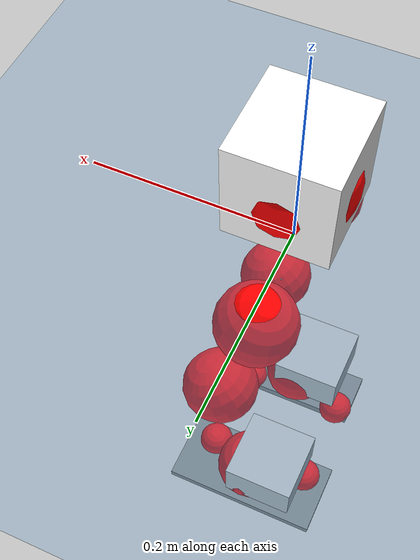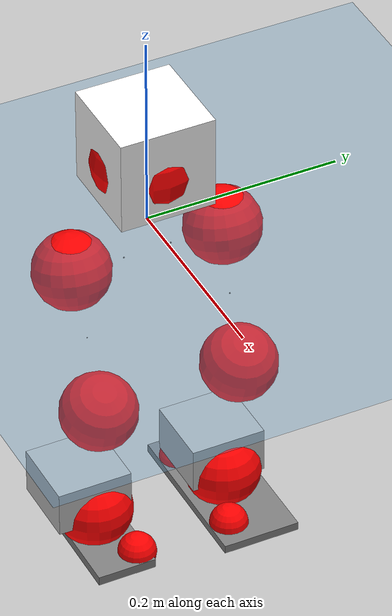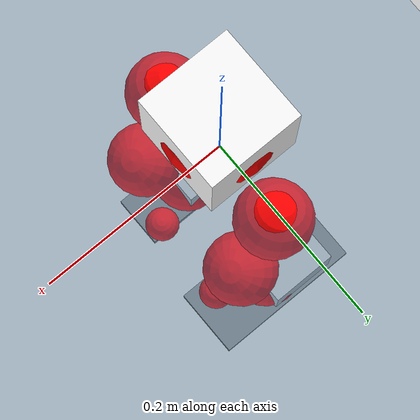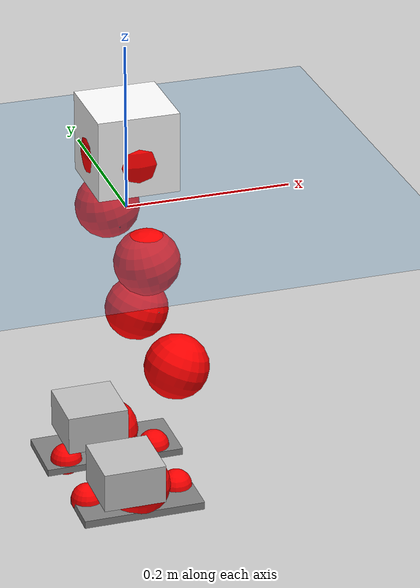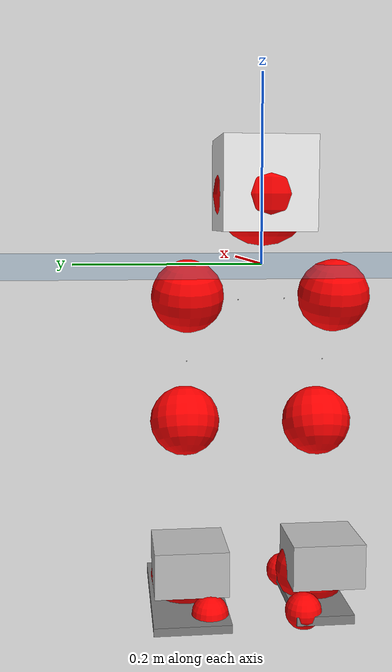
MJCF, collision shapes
<mujoco model="pi_12dof_release_v1">
  <compiler angle="radian" assetdir="assets" balanceinertia="true" inertiafromgeom="false"/>

  <option timestep="0.005" density="1.2" viscosity="2e-05"/>

  <size nkey="1"/>

  <visual>
    <quality shadowsize="8192"/>
    <map shadowclip="0.5"/>
  </visual>

  <default>
    <default class="/">
      <joint armature="0.01" damping="0.01" frictionloss="0.01"/>
      <geom contype="0" conaffinity="0" group="1" solref="-1000 -80"/>
      <site size="0.01 0.005 0.005" group="5"/>
      <general forcelimited="true" biastype="affine" gainprm="20" biasprm="0 -20 -0.5"/>
      <default class="foot">
        <geom size="0.0845 0.036 0.005" type="box" condim="6" group="4" priority="1" friction="0.9 0.2 0.2" solimp="0.015 1 0.005"/>
      </default>
      <default class="reward_collision_sphere">
        <geom group="5" rgba="1 0 0 1"/>
      </default>
    </default>
  </default>

  <asset>
    <texture type="skybox" colorspace="auto" name="//unnamed_texture_0" builtin="gradient" rgb1="0.95 0.95 0.95" rgb2="0.95 0.95 0.95" width="100" height="600"/>
    <texture type="2d" colorspace="auto" name="texplane" builtin="checker" rgb1="0.345 0.575 0.748" rgb2="0.345 0.575 0.748" markrgb="1 1 1" width="512" height="512"/>
    <material name="MatPlane" class="/" texture="texplane" texuniform="true" texrepeat="2 2" specular="0.9"/>
    <mesh name="baselink_1" class="/" file="baselink_1.STL"/>
    <mesh name="r_hip_pitch_link" class="/" file="r_hip_pitch_link.STL"/>
    <mesh name="r_hip_roll_link" class="/" file="r_hip_roll_link.STL"/>
    <mesh name="r_thigh_link" class="/" file="r_thigh_link.STL"/>
    <mesh name="r_calf_link" class="/" file="r_calf_link.STL"/>
    <mesh name="r_ankle_pitch_link" class="/" file="r_ankle_pitch_link.STL"/>
    <mesh name="r_ankle_roll_link" class="/" file="r_ankle_roll_link.STL"/>
    <mesh name="l_hip_pitch_link" class="/" file="l_hip_pitch_link.STL"/>
    <mesh name="l_hip_roll_link" class="/" file="l_hip_roll_link.STL"/>
    <mesh name="l_thigh_link" class="/" file="l_thigh_link.STL"/>
    <mesh name="l_calf_link" class="/" file="l_calf_link.STL"/>
    <mesh name="l_ankle_pitch_link" class="/" file="l_ankle_pitch_link.STL"/>
    <mesh name="l_ankle_roll_link" class="/" file="l_ankle_roll_link.STL"/>
  </asset>

  <worldbody>
    <geom name="floor" class="/" size="100 100 0.125" type="plane" group="0" material="MatPlane"/>
    <light name="toplight_shadow" class="/" pos="0 0 5" dir="0.0990148 0.0990148 -0.990148" type="directional" ambient="0.04 0.04 0.04" diffuse="0.55 0.55 0.55" specular="0.12 0.12 0.12"/>
    <light name="toplight_fill" class="/" pos="0 0 5" dir="0.0990148 0.0990148 -0.990148" type="directional" castshadow="false" ambient="0.04 0.04 0.04" diffuse="0.3 0.3 0.3" specular="0.08 0.08 0.08"/>
    <body name="trunk" pos="0.000926454 -0.00133463 -0.00265618" quat="1 0.00044484 -0.000410534 0.000233848">
      <inertial pos="0.000217162 0.00193604 0.0448127" quat="0.700985 0.00465735 0.00478758 0.713145" mass="2.0576" diaginertia="0.00412657 0.00960293 0.00629087"/>
      <joint name="//unnamed_joint_0" type="free"/>
      <geom name="//unnamed_geom_1" class="/" type="mesh" density="0" rgba="1 1 1 1" mesh="baselink_1"/>
      <geom name="//unnamed_geom_2" class="/" size="0.0486922 0.0486922 0.0486922" pos="0 0 0.0864642" type="box" rgba="1 1 1 1"/>
      <geom name="//unnamed_geom_3" class="reward_collision_sphere" size="0.0535615" pos="0 0 0.0756562"/>
      <site name="imu" class="/" pos="-0.00354118 -0.000774709 -0.00083004" size="0.00973845"/>
      <camera name="track" class="/" pos="0 -2.01663 0" quat="0.707107 0.707107 0 0" mode="trackcom"/>
      <camera name="ego_camera" class="/" pos="0.0624312 0 0.194545" quat="-0.5 -0.5 0.5 0.5"/>
      <body name="r_hip_pitch_link" pos="0.000480544 -0.0238583 -0.0343986" quat="0.992256 -0.000104233 -0.124206 -0.000212635">
        <inertial pos="0.000231295 -0.0560092 0.000276656" quat="-0.0170994 0.696984 -0.0170384 0.716681" mass="0.347337" diaginertia="4.45409e-05 0.000101697 0.000126381"/>
        <joint name="r_hip_pitch_joint" class="/" pos="0 0 0" axis="-0.00686939 -0.999925 0.0101251" stiffness="0.0120722" range="-1.71445 1.28851" armature="0.00960591" damping="0.00123511" frictionloss="0.00895521"/>
        <geom name="//unnamed_geom_4" class="/" type="mesh" density="0" rgba="0.75294 0.75294 0.75294 1" mesh="r_hip_pitch_link"/>
        <geom name="//unnamed_geom_5" class="/" size="0.000486922 0.000486922 0.000486922" type="box" rgba="0.75294 0.75294 0.75294 1"/>
        <body name="r_hip_roll_link" pos="-0.000271229 -0.0539933 0.00307026" quat="0.999999 0.000872435 0.00109405 0.00026597">
          <inertial pos="0.00133764 -0.00425549 -0.0701537" quat="0.714295 -0.0836516 -0.0833065 0.689816" mass="0.364826" diaginertia="0.000133541 0.000278839 0.000187452"/>
          <joint name="r_hip_roll_joint" class="/" pos="0 0 0" axis="-0.999941 0.0104832 0.00269398" range="-0.129442 0.509458" armature="0.00988531" damping="0.00774117" frictionloss="0.00941735"/>
          <geom name="//unnamed_geom_6" class="/" type="mesh" density="0" rgba="0.75294 0.75294 0.75294 1" mesh="r_hip_roll_link"/>
          <geom name="//unnamed_geom_7" class="/" size="0.000486922 0.000486922 0.000486922" type="box" rgba="0.75294 0.75294 0.75294 1"/>
          <geom name="//unnamed_geom_8" class="reward_collision_sphere" size="0.0389538"/>
          <body name="r_thigh_link" pos="-0.00138573 0.00697562 -0.0738309" quat="1 -0.000237577 0.000257671 -0.000621797">
            <inertial pos="0.00144106 -6.86207e-05 -0.0516035" quat="0.735852 0.677012 0.00346532 0.0128486" mass="0.10543" diaginertia="4.92192e-05 9.48861e-05 8.29646e-05"/>
            <joint name="r_thigh_joint" class="/" pos="0 0 0" axis="-0.00256383 0.00352666 -0.99999" stiffness="0.00455943" range="-0.257638 0.636118" armature="0.00963669" damping="0.0192896" frictionloss="0.00876372"/>
            <geom name="//unnamed_geom_9" class="/" type="mesh" density="0" rgba="0.75294 0.75294 0.75294 1" mesh="r_thigh_link"/>
            <geom name="//unnamed_geom_10" class="/" size="0.000486922 0.000486922 0.000486922" type="box" rgba="0.75294 0.75294 0.75294 1"/>
            <body name="r_calf_link" pos="0.00281638 0.000700276 -0.0778095" quat="0.947557 -0.000327349 0.319585 0.00100675">
              <inertial pos="-0.00288844 0.00194566 -0.0775643" quat="0.999978 -0.00646612 0.00163067 0.000406237" mass="0.718159" diaginertia="0.0013737 0.00364577 0.000263077"/>
              <joint name="r_calf_joint" class="/" pos="0 0 0" axis="-0.0123476 -0.999914 0.00443981" range="-1.69478 0.611914" armature="0.00982018" damping="0" frictionloss="0.00911297"/>
              <geom name="//unnamed_geom_11" class="/" type="mesh" density="0" rgba="0.75294 0.75294 0.75294 1" mesh="r_calf_link"/>
              <geom name="//unnamed_geom_12" class="/" size="0.000486922 0.000486922 0.000486922" type="box" rgba="0.75294 0.75294 0.75294 1"/>
              <geom name="//unnamed_geom_13" class="reward_collision_sphere" size="0.0389538"/>
              <body name="r_ankle_pitch_link" pos="-0.00280699 0.00569847 -0.150444" quat="0.980069 -1.16086e-05 -0.198657 -1.36022e-05">
                <inertial pos="0.00599393 0.00209387 -0.00170976" quat="-0.00885884 0.711787 -0.00591678 0.702315" mass="0.167254" diaginertia="0.000120538 0.000229873 0.000175716"/>
                <joint name="r_ankle_pitch_joint" class="/" pos="0 0 0" axis="-0.00659385 -0.999929 0.00992725" range="-1.32339 0.531261" armature="0.00958807" damping="0.0105727" frictionloss="0.00929002"/>
                <geom name="//unnamed_geom_14" class="/" type="mesh" density="0" rgba="0.75294 0.75294 0.75294 1" mesh="r_ankle_pitch_link"/>
                <geom name="//unnamed_geom_15" class="/" size="0.03798 0.0389538 0.0243461" type="box" rgba="0.75294 0.75294 0.75294 1"/>
                <body name="r_ankle_roll_link" pos="0.0596765 0.00799705 -0.00112354" quat="1 0.000642114 0.000240764 -0.000574622">
                  <inertial pos="-0.0217311 0.00168463 -0.0154958" quat="0.554314 0.442048 0.433809 0.556003" mass="0.463862" diaginertia="0.00042282 0.00105289 0.000395013"/>
                  <joint name="r_ankle_roll_joint" class="/" pos="0 0 0" axis="-0.999835 -0.00631138 -0.0170306" range="-0.206912 0.155995" armature="0.00952437" damping="0.0137193" frictionloss="0.011036"/>
                  <geom name="//unnamed_geom_16" class="/" type="mesh" density="0" rgba="0.75294 0.75294 0.75294 1" mesh="r_ankle_roll_link"/>
                  <geom name="//unnamed_geom_17" class="/" type="mesh" rgba="0.75294 0.75294 0.75294 1" mesh="r_ankle_roll_link"/>
                  <geom name="right_foot" class="foot" size="0.0748218 0.0305642 0.00480438" pos="-0.0424532 0 -0.0475553"/>
                  <geom name="//unnamed_geom_19" class="reward_collision_sphere" size="0.0389538" pos="-0.0416208 0 -0.0216161"/>
                  <geom name="//unnamed_geom_20" class="reward_collision_sphere" size="0.0194769" pos="0.0124862 0.0201663 -0.0432321"/>
                  <geom name="//unnamed_geom_21" class="reward_collision_sphere" size="0.0194769" pos="-0.0998899 0.0201663 -0.0432321"/>
                  <site name="right_foot" class="foot" pos="-0.0424532 0 -0.0475553" size="0.00973845"/>
                </body>
              </body>
            </body>
          </body>
        </body>
      </body>
      <body name="l_hip_pitch_link" pos="-0.00145553 0.026209 -0.0350607" quat="0.99223 -9.40027e-05 -0.124417 -6.4181e-05">
        <inertial pos="0.00301692 0.0517571 0.00172019" quat="-0.0486738 0.709084 0.0269355 0.702926" mass="0.360609" diaginertia="4.83235e-05 0.000102794 0.000147182"/>
        <joint name="l_hip_pitch_joint" class="/" pos="0 0 0" axis="-0.0102483 0.999947 -0.000872303" range="-1.22148 1.74194" armature="0.00996641" damping="0.0113272" frictionloss="0.0101487"/>
        <geom name="//unnamed_geom_22" class="/" type="mesh" density="0" rgba="0.75294 0.75294 0.75294 1" mesh="l_hip_pitch_link"/>
        <geom name="//unnamed_geom_23" class="/" size="0.000486922 0.000486922 0.000486922" type="box" rgba="0.75294 0.75294 0.75294 1"/>
        <body name="l_hip_roll_link" pos="0.00192096 0.0544518 0.0034864" quat="1 0.000537601 -0.000423248 0.000435868">
          <inertial pos="0.00243579 -0.00311108 -0.0639036" quat="0.700145 -0.0732139 -0.0767487 0.706078" mass="0.366988" diaginertia="0.000128951 0.000294911 0.000186429"/>
          <joint name="l_hip_roll_joint" class="/" pos="0 0 0" axis="-0.999991 -0.00133447 0.00400129" stiffness="0.0101887" range="-0.485543 0.159056" armature="0.00857026" damping="0" frictionloss="0.00873847"/>
          <geom name="//unnamed_geom_24" class="/" type="mesh" density="0" rgba="0.75294 0.75294 0.75294 1" mesh="l_hip_roll_link"/>
          <geom name="//unnamed_geom_25" class="/" size="0.000486922 0.000486922 0.000486922" type="box" rgba="0.75294 0.75294 0.75294 1"/>
          <geom name="//unnamed_geom_26" class="reward_collision_sphere" size="0.0389538"/>
          <body name="l_thigh_link" pos="-0.00275726 -0.000110358 -0.0740003" quat="0.999999 -0.00102802 -0.00020765 -6.96359e-05">
            <inertial pos="-0.000468213 -0.00128928 -0.0535401" quat="0.675297 0.737545 -8.55607e-06 3.05724e-05" mass="0.102779" diaginertia="5.03979e-05 9.97549e-05 8.68132e-05"/>
            <joint name="l_thigh_joint" class="/" pos="0 0 0" axis="-0.00145069 0.000459382 -0.999999" stiffness="0.00372296" range="-0.552974 0.337006" armature="0.00860551" damping="0.00282615" frictionloss="0.0110434"/>
            <geom name="//unnamed_geom_27" class="/" type="mesh" density="0" rgba="0.75294 0.75294 0.75294 1" mesh="l_thigh_link"/>
            <geom name="//unnamed_geom_28" class="/" size="0.000486922 0.000486922 0.000486922" type="box" rgba="0.75294 0.75294 0.75294 1"/>
            <body name="l_calf_link" pos="0.0018837 0.000282414 -0.0735874" quat="0.947948 0.000447248 0.318423 -0.00119899">
              <inertial pos="0.000745934 0.000164814 -0.0797842" quat="0.99997 0.00549937 0.00357305 0.00421468" mass="0.725489" diaginertia="0.00136553 0.00365838 0.000239482"/>
              <joint name="l_calf_joint" class="/" pos="0 0 0" axis="-0.00638822 0.999962 -0.00594562" stiffness="0.0132338" range="-0.658313 1.60273" armature="0.00854899" damping="0.003151" frictionloss="0.0109981"/>
              <geom name="//unnamed_geom_29" class="/" type="mesh" density="0" rgba="0.75294 0.75294 0.75294 1" mesh="l_calf_link"/>
              <geom name="//unnamed_geom_30" class="/" size="0.000486922 0.000486922 0.000486922" type="box" rgba="0.75294 0.75294 0.75294 1"/>
              <geom name="//unnamed_geom_31" class="reward_collision_sphere" size="0.0389538"/>
              <body name="l_ankle_pitch_link" pos="-0.0010305 0.000816884 -0.155054" quat="0.979987 0.000699601 -0.199057 0.00093294">
                <inertial pos="0.00353318 -0.00161229 -0.00183219" quat="0.00450735 0.706964 0.00590826 0.70721" mass="0.172693" diaginertia="0.000125145 0.000230098 0.000178555"/>
                <joint name="l_ankle_pitch_joint" class="/" pos="0 0 0" axis="0.00252318 0.999996 0.00107647" range="-0.548049 1.32" armature="0.0101849" damping="0.00405729" frictionloss="0.00892096"/>
                <geom name="//unnamed_geom_32" class="/" type="mesh" density="0" rgba="0.75294 0.75294 0.75294 1" mesh="l_ankle_pitch_link"/>
                <geom name="//unnamed_geom_33" class="/" size="0.03798 0.0389538 0.0243461" type="box" rgba="0.75294 0.75294 0.75294 1"/>
                <body name="l_ankle_roll_link" pos="0.0636507 0.00126448 0.00114315" quat="1 -2.93281e-05 0.000184131 -7.62806e-05">
                  <inertial pos="-0.0226427 0.000105949 -0.014249" quat="0.560909 0.431107 0.43233 0.559123" mass="0.489334" diaginertia="0.000469154 0.00111202 0.000416402"/>
                  <joint name="l_ankle_roll_joint" class="/" pos="0 0 0" axis="-0.999998 0.000495624 -0.00183571" range="-0.200723 0.135622" armature="0.00905194" damping="0.0120586" frictionloss="0.00842979"/>
                  <geom name="//unnamed_geom_34" class="/" type="mesh" density="0" rgba="0.75294 0.75294 0.75294 1" mesh="l_ankle_roll_link"/>
                  <geom name="//unnamed_geom_35" class="/" type="mesh" rgba="0.75294 0.75294 0.75294 1" mesh="l_ankle_roll_link"/>
                  <geom name="left_foot" class="foot" size="0.086486 0.0400826 0.00432569" pos="-0.0424532 0 -0.0475553"/>
                  <geom name="//unnamed_geom_37" class="reward_collision_sphere" size="0.0389538" pos="-0.0416208 0 -0.0216161"/>
                  <geom name="//unnamed_geom_38" class="reward_collision_sphere" size="0.0194769" pos="0.0124862 -0.0201663 -0.0432321"/>
                  <geom name="//unnamed_geom_39" class="reward_collision_sphere" size="0.0194769" pos="-0.0998899 -0.0201663 -0.0432321"/>
                  <site name="left_foot" class="foot" pos="-0.0424532 0 -0.0475553" size="0.00973845"/>
                </body>
              </body>
            </body>
          </body>
        </body>
      </body>
    </body>
  </worldbody>

  <contact>
    <pair class="/" geom1="floor" geom2="right_foot" name="//unnamed_contact_1"/>
    <pair class="/" geom1="floor" geom2="left_foot" name="//unnamed_contact_0"/>
  </contact>

  <actuator>
    <general name="r_hip_pitch_joint" class="/" joint="r_hip_pitch_joint" forcerange="-18.5226 18.5226" gainprm="18.3634" biasprm="0 -18.3634 -0.544198"/>
    <general name="r_hip_roll_joint" class="/" joint="r_hip_roll_joint" forcerange="-18.4162 18.4162" gainprm="18.3634" biasprm="0 -18.3634 -0.544198"/>
    <general name="r_thigh_joint" class="/" joint="r_thigh_joint" forcerange="-20.4959 20.4959" gainprm="18.3634" biasprm="0 -18.3634 -0.544198"/>
    <general name="r_calf_joint" class="/" joint="r_calf_joint" forcerange="-20.4958 20.4958" gainprm="18.3634" biasprm="0 -18.3634 -0.544198"/>
    <general name="r_ankle_pitch_joint" class="/" joint="r_ankle_pitch_joint" forcerange="-20.2169 20.2169" gainprm="18.3634" biasprm="0 -18.3634 -0.544198"/>
    <general name="r_ankle_roll_joint" class="/" joint="r_ankle_roll_joint" forcerange="-20.7909 20.7909" gainprm="18.3634" biasprm="0 -18.3634 -0.544198"/>
    <general name="l_hip_pitch_joint" class="/" joint="l_hip_pitch_joint" forcerange="-22.4534 22.4534" gainprm="18.3634" biasprm="0 -18.3634 -0.544198"/>
    <general name="l_hip_roll_joint" class="/" joint="l_hip_roll_joint" forcerange="-20.7982 20.7982" gainprm="18.3634" biasprm="0 -18.3634 -0.544198"/>
    <general name="l_thigh_joint" class="/" joint="l_thigh_joint" forcerange="-20.1141 20.1141" gainprm="18.3634" biasprm="0 -18.3634 -0.544198"/>
    <general name="l_calf_joint" class="/" joint="l_calf_joint" forcerange="-18.7033 18.7033" gainprm="18.3634" biasprm="0 -18.3634 -0.544198"/>
    <general name="l_ankle_pitch_joint" class="/" joint="l_ankle_pitch_joint" forcerange="-20.8757 20.8757" gainprm="18.3634" biasprm="0 -18.3634 -0.544198"/>
    <general name="l_ankle_roll_joint" class="/" joint="l_ankle_roll_joint" forcerange="-19.8028 19.8028" gainprm="18.3634" biasprm="0 -18.3634 -0.544198"/>
  </actuator>

  <sensor>
    <gyro site="imu" name="imu_angular_velocity"/>
    <velocimeter site="imu" name="imu_linear_velocity"/>
    <framelinvel objtype="site" objname="left_foot" name="left_foot_global_linear_velocity"/>
    <framelinvel objtype="site" objname="right_foot" name="right_foot_global_linear_velocity"/>
  </sensor>

  <keyframe>
    <key name="home" qpos="0 0 0.291 1 0 0 0 0.4 0 0 -0.8 0.4 0 -0.4 0 0 0.8 -0.4 0"/>
  </keyframe>
</mujoco>
